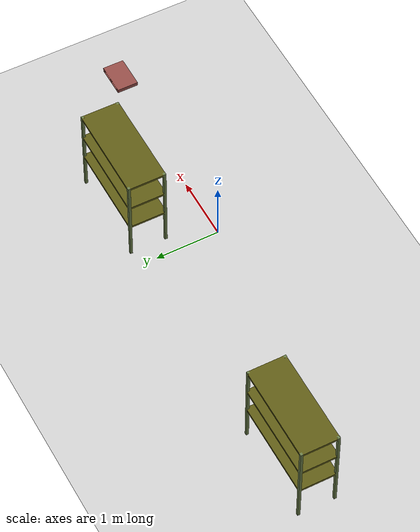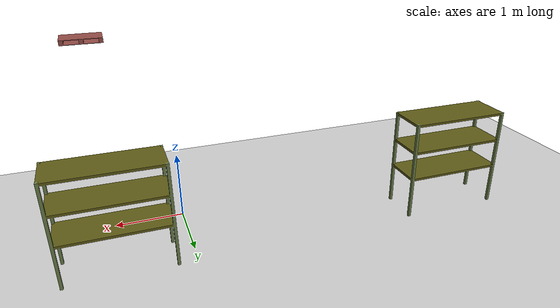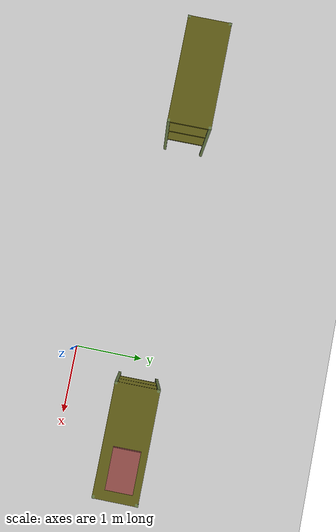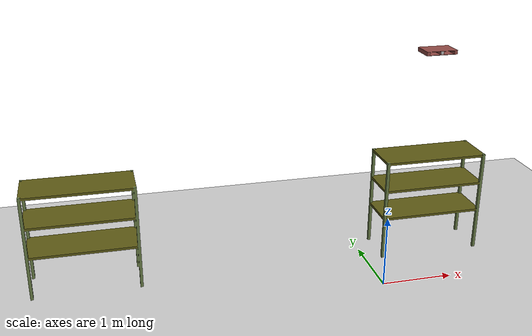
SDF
<sdf version="1.4">
 <world name="cube_world">
  <include><uri>model://sun</uri></include>
  <light type="point" name="my_light">
   <pose>-1.5 -3 2 0 0 0</pose>
   <diffuse>.9 .9 .9 1</diffuse>
   <specular>.1 .1 .1 1</specular>
   <attenuation><range>20</range><constant>0.5</constant><linear>0.05</linear></attenuation>
  </light>
  <model name="ground_plane_0">
   <static>1</static>
   <link name="p_link">
    <collision name="p_collision">
     <geometry><plane><normal>0 0 1</normal><size>100 100</size></plane></geometry>
     <surface><friction><ode><mu>100</mu><mu2>50</mu2></ode></friction></surface>
    </collision>
    <visual name="p_visual">
     <cast_shadows>0</cast_shadows>
     <geometry><plane><normal>0 0 1</normal><size>100 100</size></plane></geometry>
    </visual>
    <velocity_decay><linear>0</linear><angular>0</angular></velocity_decay>
   </link>
   <pose>0.497681 0 0 0 -0 0</pose>
  </model>
  <physics type="ode">
   <max_step_size>0.01</max_step_size>
   <real_time_factor>1</real_time_factor>
   <real_time_update_rate>100</real_time_update_rate>
   <gravity>0 0 -9.8</gravity>
  </physics>
  <model name="shelf">
   <static>1</static>
   <pose>1 1 0.85  0 0 0</pose>
   <link name="body">
    <inertial><mass>30</mass></inertial>
    <collision name="s_back">
     <geometry><mesh><uri>model://shelf.dae</uri></mesh></geometry>
     <surface>
      <bounce><restitution_coefficient>0</restitution_coefficient></bounce>
      <friction><ode><mu>100</mu><mu2>50</mu2></ode></friction>
     </surface>
    </collision>
    <visual name="s_visual"><geometry><mesh><uri>model://shelf.dae</uri></mesh></geometry></visual>
    <velocity_decay><linear>0</linear><angular>0</angular></velocity_decay>
   </link>
  </model>
  <model name="shelf2">
   <static>1</static>
   <pose>-4 1 0.85  0 0 0</pose>
   <link name="body2">
    <inertial><mass>30</mass></inertial>
    <collision name="s_back2">
     <geometry><mesh><uri>model://shelf.dae</uri></mesh></geometry>
     <surface>
      <bounce><restitution_coefficient>0</restitution_coefficient></bounce>
      <friction><ode><mu>100</mu><mu2>50</mu2></ode></friction>
     </surface>
    </collision>
    <visual name="s_visual2"><geometry><mesh><uri>model://shelf.dae</uri></mesh></geometry></visual>
    <velocity_decay><linear>0</linear><angular>0</angular></velocity_decay>
   </link>
  </model>
  <model name="shelf_pad1">
   <static>0</static>
   <pose>1 1 1 0 0 3.14150</pose>
   <link name="sp_body1">
    <inertial>
     <mass>3</mass>
     <inertia><ixx>0.005</ixx><ixy>0</ixy><ixz>0</ixz><iyy>0.005</iyy><iyz>0</iyz><izz>0.005</izz></inertia>
    </inertial>
    <collision name="sp_back1">
     <geometry><mesh><uri>model://Ar_shelf_pad.dae</uri></mesh></geometry>
     <surface><friction><ode><mu>100</mu><mu2>50</mu2></ode></friction></surface>
    </collision>
    <visual name="sp_visual1"><geometry><mesh><uri>model://Ar_shelf_pad.dae</uri></mesh></geometry></visual>
    <velocity_decay><linear>0</linear><angular>0</angular></velocity_decay>
   </link>
  </model>
  <model name="shelf_pad2">
   <static>0</static>
   <pose>1.5 1 1 0 0 3.1415</pose>
   <link name="sp_body2">
    <inertial>
     <mass>3</mass>
     <inertia><ixx>0.005</ixx><ixy>0</ixy><ixz>0</ixz><iyy>0.005</iyy><iyz>0</iyz><izz>0.005</izz></inertia>
    </inertial>
    <collision name="sp_back2">
     <geometry><mesh><uri>model://Ar_shelf_pad.dae</uri></mesh></geometry>
     <surface><friction><ode><mu>100</mu><mu2>50</mu2></ode></friction></surface>
    </collision>
    <visual name="sp_visual2"><geometry><mesh><uri>model://Ar_shelf_pad.dae</uri></mesh></geometry></visual>
    <velocity_decay><linear>0</linear><angular>0</angular></velocity_decay>
   </link>
  </model>
  <model name="shelf_pad3">
   <static>0</static>
   <pose>1 1 3 0 0 3.1415</pose>
   <link name="sp_body3">
    <inertial>
     <mass>3</mass>
     <inertia><ixx>0.005</ixx><ixy>0</ixy><ixz>0</ixz><iyy>0.005</iyy><iyz>0</iyz><izz>0.005</izz></inertia>
    </inertial>
    <collision name="sp_back3">
     <geometry><mesh><uri>model://Ar_shelf_pad.dae</uri></mesh></geometry>
     <surface><friction><ode><mu>100</mu><mu2>50</mu2></ode></friction></surface>
    </collision>
    <visual name="sp_visual3"><geometry><mesh><uri>model://Ar_shelf_pad.dae</uri></mesh></geometry></visual>
    <velocity_decay><linear>0</linear><angular>0</angular></velocity_decay>
   </link>
  </model>
 </world>
</sdf>
